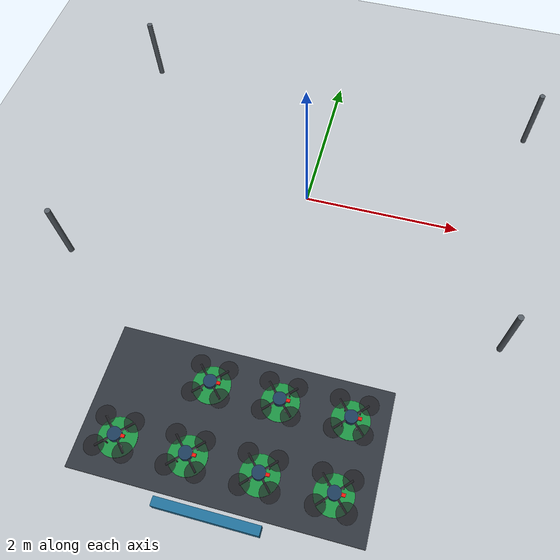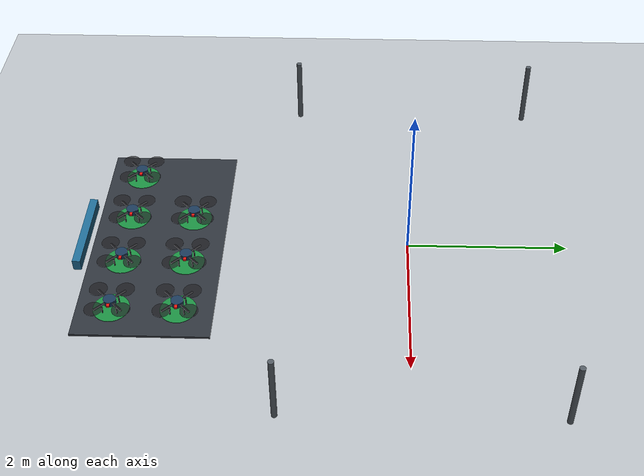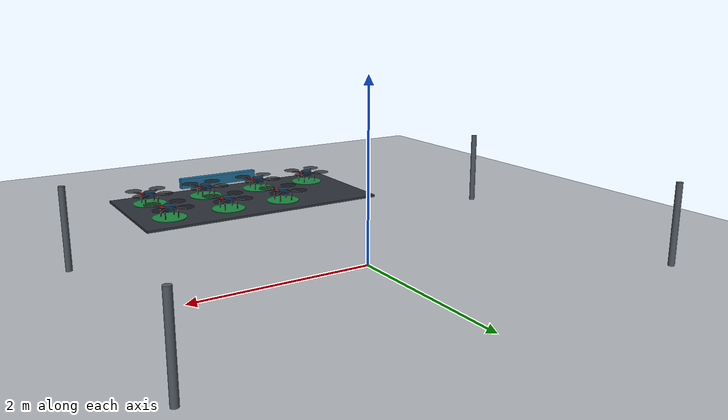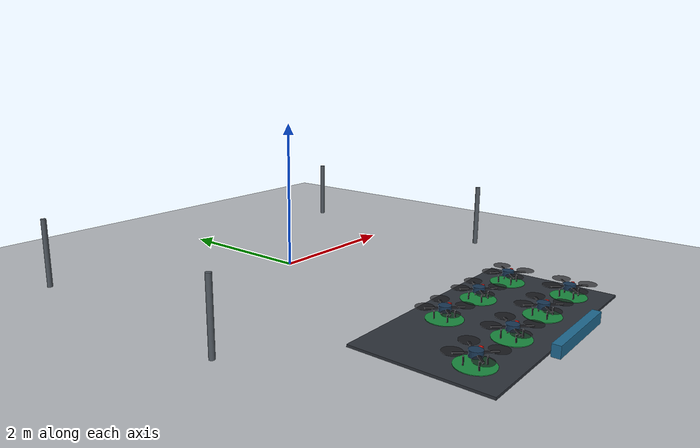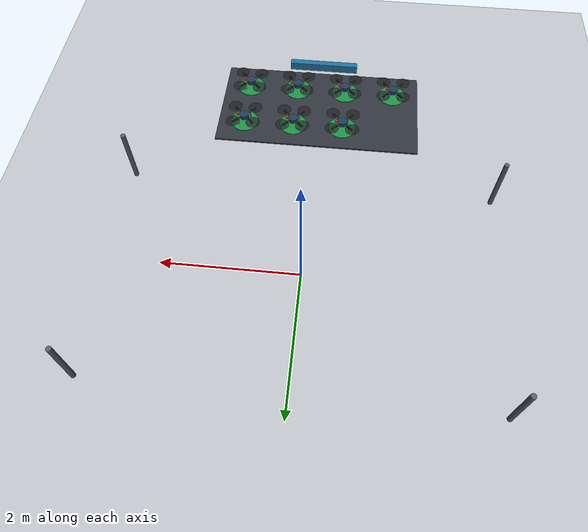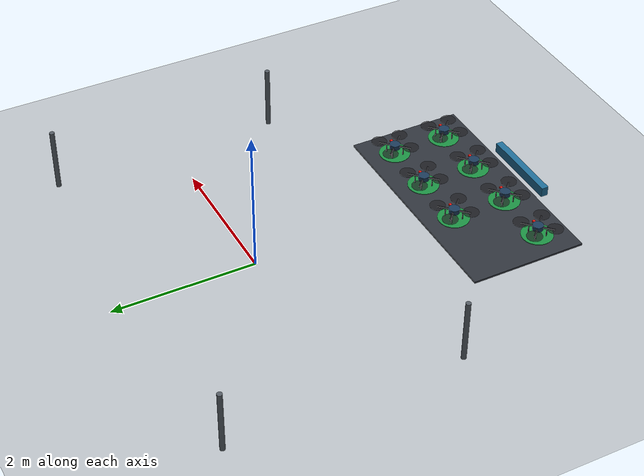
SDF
<?xml version="1.0"?>
<sdf version="1.9">
  <world name="open_team">
    <physics name="2ms_recording" type="ignored">
      <max_step_size>0.002</max_step_size>
      <real_time_factor>1.0</real_time_factor>
    </physics>

    <plugin filename="gz-sim-physics-system" name="gz::sim::systems::Physics"/>
    <plugin filename="gz-sim-user-commands-system" name="gz::sim::systems::UserCommands"/>
    <plugin filename="gz-sim-scene-broadcaster-system" name="gz::sim::systems::SceneBroadcaster"/>

    <light type="directional" name="sun">
      <cast_shadows>false</cast_shadows>
      <pose>0 0 12 0 0 0</pose>
      <diffuse>0.88 0.88 0.88 1</diffuse>
      <specular>0.18 0.18 0.18 1</specular>
      <direction>-0.45 0.25 -0.85</direction>
    </light>

    <model name="ground_plane">
      <static>true</static>
      <link name="link">
        <collision name="collision"><geometry><plane><normal>0 0 1</normal><size>30 30</size></plane></geometry></collision>
        <visual name="visual">
          <geometry><plane><normal>0 0 1</normal><size>30 30</size></plane></geometry>
          <material><ambient>0.58 0.61 0.64 1</ambient><diffuse>0.72 0.74 0.76 1</diffuse><specular>0.08 0.08 0.08 1</specular></material>
        </visual>
      </link>
    </model>

    <model name="charging_station">
      <static>true</static>
      <pose>0 -3.15 0 0 0 0</pose>
      <link name="platform">
        <collision name="platform_collision"><pose>0 0 0.015 0 0 0</pose><geometry><box><size>3.25 1.65 0.03</size></box></geometry></collision>
        <visual name="platform_visual"><pose>0 0 0.015 0 0 0</pose><geometry><box><size>3.25 1.65 0.03</size></box></geometry><material><ambient>0.10 0.11 0.13 1</ambient><diffuse>0.18 0.20 0.23 1</diffuse></material></visual>
        <visual name="pad_0"><pose>-1.200 -0.400 0.034 0 0 0</pose><geometry><cylinder><radius>0.22</radius><length>0.008</length></cylinder></geometry><material><ambient>0.08 0.30 0.16 1</ambient><diffuse>0.10 0.55 0.25 1</diffuse><emissive>0.02 0.08 0.03 1</emissive></material></visual>
        <visual name="pad_1"><pose>-0.400 -0.400 0.034 0 0 0</pose><geometry><cylinder><radius>0.22</radius><length>0.008</length></cylinder></geometry><material><ambient>0.08 0.30 0.16 1</ambient><diffuse>0.10 0.55 0.25 1</diffuse><emissive>0.02 0.08 0.03 1</emissive></material></visual>
        <visual name="pad_2"><pose>0.400 -0.400 0.034 0 0 0</pose><geometry><cylinder><radius>0.22</radius><length>0.008</length></cylinder></geometry><material><ambient>0.08 0.30 0.16 1</ambient><diffuse>0.10 0.55 0.25 1</diffuse><emissive>0.02 0.08 0.03 1</emissive></material></visual>
        <visual name="pad_3"><pose>1.200 -0.400 0.034 0 0 0</pose><geometry><cylinder><radius>0.22</radius><length>0.008</length></cylinder></geometry><material><ambient>0.08 0.30 0.16 1</ambient><diffuse>0.10 0.55 0.25 1</diffuse><emissive>0.02 0.08 0.03 1</emissive></material></visual>
        <visual name="pad_4"><pose>1.200 0.400 0.034 0 0 0</pose><geometry><cylinder><radius>0.22</radius><length>0.008</length></cylinder></geometry><material><ambient>0.08 0.30 0.16 1</ambient><diffuse>0.10 0.55 0.25 1</diffuse><emissive>0.02 0.08 0.03 1</emissive></material></visual>
        <visual name="pad_5"><pose>0.400 0.400 0.034 0 0 0</pose><geometry><cylinder><radius>0.22</radius><length>0.008</length></cylinder></geometry><material><ambient>0.08 0.30 0.16 1</ambient><diffuse>0.10 0.55 0.25 1</diffuse><emissive>0.02 0.08 0.03 1</emissive></material></visual>
        <visual name="pad_6"><pose>-0.400 0.400 0.034 0 0 0</pose><geometry><cylinder><radius>0.22</radius><length>0.008</length></cylinder></geometry><material><ambient>0.08 0.30 0.16 1</ambient><diffuse>0.10 0.55 0.25 1</diffuse><emissive>0.02 0.08 0.03 1</emissive></material></visual>
        <visual name="station_label">
          <pose>0 -0.93 0.11 0 0 0</pose>
          <geometry><box><size>1.15 0.10 0.14</size></box></geometry>
          <material><ambient>0.10 0.25 0.35 1</ambient><diffuse>0.12 0.42 0.58 1</diffuse></material>
        </visual>
      </link>
    </model>

    <model name="workspace_post_0"><static>true</static><pose>-2.7 1.7 0 0 0 0</pose><link name="link"><collision name="collision"><pose>0 0 0.45 0 0 0</pose><geometry><cylinder><radius>0.035</radius><length>0.9</length></cylinder></geometry></collision><visual name="visual"><pose>0 0 0.45 0 0 0</pose><geometry><cylinder><radius>0.035</radius><length>0.9</length></cylinder></geometry><material><diffuse>0.32 0.35 0.38 1</diffuse></material></visual></link></model>
    <model name="workspace_post_1"><static>true</static><pose>2.7 1.7 0 0 0 0</pose><link name="link"><collision name="collision"><pose>0 0 0.45 0 0 0</pose><geometry><cylinder><radius>0.035</radius><length>0.9</length></cylinder></geometry></collision><visual name="visual"><pose>0 0 0.45 0 0 0</pose><geometry><cylinder><radius>0.035</radius><length>0.9</length></cylinder></geometry><material><diffuse>0.32 0.35 0.38 1</diffuse></material></visual></link></model>
    <model name="workspace_post_2"><static>true</static><pose>-2.7 -1.5 0 0 0 0</pose><link name="link"><collision name="collision"><pose>0 0 0.45 0 0 0</pose><geometry><cylinder><radius>0.035</radius><length>0.9</length></cylinder></geometry></collision><visual name="visual"><pose>0 0 0.45 0 0 0</pose><geometry><cylinder><radius>0.035</radius><length>0.9</length></cylinder></geometry><material><diffuse>0.32 0.35 0.38 1</diffuse></material></visual></link></model>
    <model name="workspace_post_3"><static>true</static><pose>2.7 -1.5 0 0 0 0</pose><link name="link"><collision name="collision"><pose>0 0 0.45 0 0 0</pose><geometry><cylinder><radius>0.035</radius><length>0.9</length></cylinder></geometry></collision><visual name="visual"><pose>0 0 0.45 0 0 0</pose><geometry><cylinder><radius>0.035</radius><length>0.9</length></cylinder></geometry><material><diffuse>0.32 0.35 0.38 1</diffuse></material></visual></link></model>

    <include>
      <uri>model://omrs_quadrotor</uri>
      <name>drone_0</name>
      <pose>-1.20000 -3.55000 0.16000 0 0 0</pose>
      <plugin filename="gz-sim-multicopter-motor-model-system" name="gz::sim::systems::MulticopterMotorModel">
        <robotNamespace>drone_0</robotNamespace>
        <jointName>rotor_0_joint</jointName>
        <linkName>rotor_0</linkName>
        <turningDirection>ccw</turningDirection>
        <timeConstantUp>0.045</timeConstantUp>
        <timeConstantDown>0.045</timeConstantDown>
        <maxRotVelocity>900.0</maxRotVelocity>
        <motorConstant>8.64197530864e-06</motorConstant>
        <momentConstant>0.018</momentConstant>
        <commandSubTopic>command/motor_speed</commandSubTopic>
        <actuator_number>0</actuator_number>
        <rotorDragCoefficient>8.06428e-05</rotorDragCoefficient>
        <rollingMomentCoefficient>1e-06</rollingMomentCoefficient>
        <motorSpeedPubTopic>motor_speed/0</motorSpeedPubTopic>
        <rotorVelocitySlowdownSim>10</rotorVelocitySlowdownSim>
        <motorType>velocity</motorType>
      </plugin>
      <plugin filename="gz-sim-multicopter-motor-model-system" name="gz::sim::systems::MulticopterMotorModel">
        <robotNamespace>drone_0</robotNamespace>
        <jointName>rotor_1_joint</jointName>
        <linkName>rotor_1</linkName>
        <turningDirection>cw</turningDirection>
        <timeConstantUp>0.045</timeConstantUp>
        <timeConstantDown>0.045</timeConstantDown>
        <maxRotVelocity>900.0</maxRotVelocity>
        <motorConstant>8.64197530864e-06</motorConstant>
        <momentConstant>0.018</momentConstant>
        <commandSubTopic>command/motor_speed</commandSubTopic>
        <actuator_number>1</actuator_number>
        <rotorDragCoefficient>8.06428e-05</rotorDragCoefficient>
        <rollingMomentCoefficient>1e-06</rollingMomentCoefficient>
        <motorSpeedPubTopic>motor_speed/1</motorSpeedPubTopic>
        <rotorVelocitySlowdownSim>10</rotorVelocitySlowdownSim>
        <motorType>velocity</motorType>
      </plugin>
      <plugin filename="gz-sim-multicopter-motor-model-system" name="gz::sim::systems::MulticopterMotorModel">
        <robotNamespace>drone_0</robotNamespace>
        <jointName>rotor_2_joint</jointName>
        <linkName>rotor_2</linkName>
        <turningDirection>ccw</turningDirection>
        <timeConstantUp>0.045</timeConstantUp>
        <timeConstantDown>0.045</timeConstantDown>
        <maxRotVelocity>900.0</maxRotVelocity>
        <motorConstant>8.64197530864e-06</motorConstant>
        <momentConstant>0.018</momentConstant>
        <commandSubTopic>command/motor_speed</commandSubTopic>
        <actuator_number>2</actuator_number>
        <rotorDragCoefficient>8.06428e-05</rotorDragCoefficient>
        <rollingMomentCoefficient>1e-06</rollingMomentCoefficient>
        <motorSpeedPubTopic>motor_speed/2</motorSpeedPubTopic>
        <rotorVelocitySlowdownSim>10</rotorVelocitySlowdownSim>
        <motorType>velocity</motorType>
      </plugin>
      <plugin filename="gz-sim-multicopter-motor-model-system" name="gz::sim::systems::MulticopterMotorModel">
        <robotNamespace>drone_0</robotNamespace>
        <jointName>rotor_3_joint</jointName>
        <linkName>rotor_3</linkName>
        <turningDirection>cw</turningDirection>
        <timeConstantUp>0.045</timeConstantUp>
        <timeConstantDown>0.045</timeConstantDown>
        <maxRotVelocity>900.0</maxRotVelocity>
        <motorConstant>8.64197530864e-06</motorConstant>
        <momentConstant>0.018</momentConstant>
        <commandSubTopic>command/motor_speed</commandSubTopic>
        <actuator_number>3</actuator_number>
        <rotorDragCoefficient>8.06428e-05</rotorDragCoefficient>
        <rollingMomentCoefficient>1e-06</rollingMomentCoefficient>
        <motorSpeedPubTopic>motor_speed/3</motorSpeedPubTopic>
        <rotorVelocitySlowdownSim>10</rotorVelocitySlowdownSim>
        <motorType>velocity</motorType>
      </plugin>
      <plugin filename="gz-sim-odometry-publisher-system" name="gz::sim::systems::OdometryPublisher">
        <odom_publish_frequency>100</odom_publish_frequency>
        <dimensions>3</dimensions>
        <odom_frame>world</odom_frame>
        <robot_base_frame>drone_0/base_link</robot_base_frame>
        <odom_topic>/model/drone_0/odometry</odom_topic>
        <tf_topic>/model/drone_0/pose</tf_topic>
      </plugin>
    </include>

    <include>
      <uri>model://omrs_quadrotor</uri>
      <name>drone_1</name>
      <pose>-0.40000 -3.55000 0.16000 0 0 0</pose>
      <plugin filename="gz-sim-multicopter-motor-model-system" name="gz::sim::systems::MulticopterMotorModel">
        <robotNamespace>drone_1</robotNamespace>
        <jointName>rotor_0_joint</jointName>
        <linkName>rotor_0</linkName>
        <turningDirection>ccw</turningDirection>
        <timeConstantUp>0.045</timeConstantUp>
        <timeConstantDown>0.045</timeConstantDown>
        <maxRotVelocity>900.0</maxRotVelocity>
        <motorConstant>8.64197530864e-06</motorConstant>
        <momentConstant>0.018</momentConstant>
        <commandSubTopic>command/motor_speed</commandSubTopic>
        <actuator_number>0</actuator_number>
        <rotorDragCoefficient>8.06428e-05</rotorDragCoefficient>
        <rollingMomentCoefficient>1e-06</rollingMomentCoefficient>
        <motorSpeedPubTopic>motor_speed/0</motorSpeedPubTopic>
        <rotorVelocitySlowdownSim>10</rotorVelocitySlowdownSim>
        <motorType>velocity</motorType>
      </plugin>
      <plugin filename="gz-sim-multicopter-motor-model-system" name="gz::sim::systems::MulticopterMotorModel">
        <robotNamespace>drone_1</robotNamespace>
        <jointName>rotor_1_joint</jointName>
        <linkName>rotor_1</linkName>
        <turningDirection>cw</turningDirection>
        <timeConstantUp>0.045</timeConstantUp>
        <timeConstantDown>0.045</timeConstantDown>
        <maxRotVelocity>900.0</maxRotVelocity>
        <motorConstant>8.64197530864e-06</motorConstant>
        <momentConstant>0.018</momentConstant>
        <commandSubTopic>command/motor_speed</commandSubTopic>
        <actuator_number>1</actuator_number>
        <rotorDragCoefficient>8.06428e-05</rotorDragCoefficient>
        <rollingMomentCoefficient>1e-06</rollingMomentCoefficient>
        <motorSpeedPubTopic>motor_speed/1</motorSpeedPubTopic>
        <rotorVelocitySlowdownSim>10</rotorVelocitySlowdownSim>
        <motorType>velocity</motorType>
      </plugin>
      <plugin filename="gz-sim-multicopter-motor-model-system" name="gz::sim::systems::MulticopterMotorModel">
        <robotNamespace>drone_1</robotNamespace>
        <jointName>rotor_2_joint</jointName>
        <linkName>rotor_2</linkName>
        <turningDirection>ccw</turningDirection>
        <timeConstantUp>0.045</timeConstantUp>
        <timeConstantDown>0.045</timeConstantDown>
        <maxRotVelocity>900.0</maxRotVelocity>
        <motorConstant>8.64197530864e-06</motorConstant>
        <momentConstant>0.018</momentConstant>
        <commandSubTopic>command/motor_speed</commandSubTopic>
        <actuator_number>2</actuator_number>
        <rotorDragCoefficient>8.06428e-05</rotorDragCoefficient>
        <rollingMomentCoefficient>1e-06</rollingMomentCoefficient>
        <motorSpeedPubTopic>motor_speed/2</motorSpeedPubTopic>
        <rotorVelocitySlowdownSim>10</rotorVelocitySlowdownSim>
        <motorType>velocity</motorType>
      </plugin>
      <plugin filename="gz-sim-multicopter-motor-model-system" name="gz::sim::systems::MulticopterMotorModel">
        <robotNamespace>drone_1</robotNamespace>
        <jointName>rotor_3_joint</jointName>
        <linkName>rotor_3</linkName>
        <turningDirection>cw</turningDirection>
        <timeConstantUp>0.045</timeConstantUp>
        <timeConstantDown>0.045</timeConstantDown>
        <maxRotVelocity>900.0</maxRotVelocity>
        <motorConstant>8.64197530864e-06</motorConstant>
        <momentConstant>0.018</momentConstant>
        <commandSubTopic>command/motor_speed</commandSubTopic>
        <actuator_number>3</actuator_number>
        <rotorDragCoefficient>8.06428e-05</rotorDragCoefficient>
        <rollingMomentCoefficient>1e-06</rollingMomentCoefficient>
        <motorSpeedPubTopic>motor_speed/3</motorSpeedPubTopic>
        <rotorVelocitySlowdownSim>10</rotorVelocitySlowdownSim>
        <motorType>velocity</motorType>
      </plugin>
      <plugin filename="gz-sim-odometry-publisher-system" name="gz::sim::systems::OdometryPublisher">
        <odom_publish_frequency>100</odom_publish_frequency>
        <dimensions>3</dimensions>
        <odom_frame>world</odom_frame>
        <robot_base_frame>drone_1/base_link</robot_base_frame>
        <odom_topic>/model/drone_1/odometry</odom_topic>
        <tf_topic>/model/drone_1/pose</tf_topic>
      </plugin>
    </include>

    <include>
      <uri>model://omrs_quadrotor</uri>
      <name>drone_2</name>
      <pose>0.40000 -3.55000 0.16000 0 0 0</pose>
      <plugin filename="gz-sim-multicopter-motor-model-system" name="gz::sim::systems::MulticopterMotorModel">
        <robotNamespace>drone_2</robotNamespace>
        <jointName>rotor_0_joint</jointName>
        <linkName>rotor_0</linkName>
        <turningDirection>ccw</turningDirection>
        <timeConstantUp>0.045</timeConstantUp>
        <timeConstantDown>0.045</timeConstantDown>
        <maxRotVelocity>900.0</maxRotVelocity>
        <motorConstant>8.64197530864e-06</motorConstant>
        <momentConstant>0.018</momentConstant>
        <commandSubTopic>command/motor_speed</commandSubTopic>
        <actuator_number>0</actuator_number>
        <rotorDragCoefficient>8.06428e-05</rotorDragCoefficient>
        <rollingMomentCoefficient>1e-06</rollingMomentCoefficient>
        <motorSpeedPubTopic>motor_speed/0</motorSpeedPubTopic>
        <rotorVelocitySlowdownSim>10</rotorVelocitySlowdownSim>
        <motorType>velocity</motorType>
      </plugin>
      <plugin filename="gz-sim-multicopter-motor-model-system" name="gz::sim::systems::MulticopterMotorModel">
        <robotNamespace>drone_2</robotNamespace>
        <jointName>rotor_1_joint</jointName>
        <linkName>rotor_1</linkName>
        <turningDirection>cw</turningDirection>
        <timeConstantUp>0.045</timeConstantUp>
        <timeConstantDown>0.045</timeConstantDown>
        <maxRotVelocity>900.0</maxRotVelocity>
        <motorConstant>8.64197530864e-06</motorConstant>
        <momentConstant>0.018</momentConstant>
        <commandSubTopic>command/motor_speed</commandSubTopic>
        <actuator_number>1</actuator_number>
        <rotorDragCoefficient>8.06428e-05</rotorDragCoefficient>
        <rollingMomentCoefficient>1e-06</rollingMomentCoefficient>
        <motorSpeedPubTopic>motor_speed/1</motorSpeedPubTopic>
        <rotorVelocitySlowdownSim>10</rotorVelocitySlowdownSim>
        <motorType>velocity</motorType>
      </plugin>
      <plugin filename="gz-sim-multicopter-motor-model-system" name="gz::sim::systems::MulticopterMotorModel">
        <robotNamespace>drone_2</robotNamespace>
        <jointName>rotor_2_joint</jointName>
        <linkName>rotor_2</linkName>
        <turningDirection>ccw</turningDirection>
        <timeConstantUp>0.045</timeConstantUp>
        <timeConstantDown>0.045</timeConstantDown>
        <maxRotVelocity>900.0</maxRotVelocity>
        <motorConstant>8.64197530864e-06</motorConstant>
        <momentConstant>0.018</momentConstant>
        <commandSubTopic>command/motor_speed</commandSubTopic>
        <actuator_number>2</actuator_number>
        <rotorDragCoefficient>8.06428e-05</rotorDragCoefficient>
        <rollingMomentCoefficient>1e-06</rollingMomentCoefficient>
        <motorSpeedPubTopic>motor_speed/2</motorSpeedPubTopic>
        <rotorVelocitySlowdownSim>10</rotorVelocitySlowdownSim>
        <motorType>velocity</motorType>
      </plugin>
      <plugin filename="gz-sim-multicopter-motor-model-system" name="gz::sim::systems::MulticopterMotorModel">
        <robotNamespace>drone_2</robotNamespace>
        <jointName>rotor_3_joint</jointName>
        <linkName>rotor_3</linkName>
        <turningDirection>cw</turningDirection>
        <timeConstantUp>0.045</timeConstantUp>
        <timeConstantDown>0.045</timeConstantDown>
        <maxRotVelocity>900.0</maxRotVelocity>
        <motorConstant>8.64197530864e-06</motorConstant>
        <momentConstant>0.018</momentConstant>
        <commandSubTopic>command/motor_speed</commandSubTopic>
        <actuator_number>3</actuator_number>
        <rotorDragCoefficient>8.06428e-05</rotorDragCoefficient>
        <rollingMomentCoefficient>1e-06</rollingMomentCoefficient>
        <motorSpeedPubTopic>motor_speed/3</motorSpeedPubTopic>
        <rotorVelocitySlowdownSim>10</rotorVelocitySlowdownSim>
        <motorType>velocity</motorType>
      </plugin>
      <plugin filename="gz-sim-odometry-publisher-system" name="gz::sim::systems::OdometryPublisher">
        <odom_publish_frequency>100</odom_publish_frequency>
        <dimensions>3</dimensions>
        <odom_frame>world</odom_frame>
        <robot_base_frame>drone_2/base_link</robot_base_frame>
        <odom_topic>/model/drone_2/odometry</odom_topic>
        <tf_topic>/model/drone_2/pose</tf_topic>
      </plugin>
    </include>

    <include>
      <uri>model://omrs_quadrotor</uri>
      <name>drone_3</name>
      <pose>1.20000 -3.55000 0.16000 0 0 0</pose>
      <plugin filename="gz-sim-multicopter-motor-model-system" name="gz::sim::systems::MulticopterMotorModel">
        <robotNamespace>drone_3</robotNamespace>
        <jointName>rotor_0_joint</jointName>
        <linkName>rotor_0</linkName>
        <turningDirection>ccw</turningDirection>
        <timeConstantUp>0.045</timeConstantUp>
        <timeConstantDown>0.045</timeConstantDown>
        <maxRotVelocity>900.0</maxRotVelocity>
        <motorConstant>8.64197530864e-06</motorConstant>
        <momentConstant>0.018</momentConstant>
        <commandSubTopic>command/motor_speed</commandSubTopic>
        <actuator_number>0</actuator_number>
        <rotorDragCoefficient>8.06428e-05</rotorDragCoefficient>
        <rollingMomentCoefficient>1e-06</rollingMomentCoefficient>
        <motorSpeedPubTopic>motor_speed/0</motorSpeedPubTopic>
        <rotorVelocitySlowdownSim>10</rotorVelocitySlowdownSim>
        <motorType>velocity</motorType>
      </plugin>
      <plugin filename="gz-sim-multicopter-motor-model-system" name="gz::sim::systems::MulticopterMotorModel">
        <robotNamespace>drone_3</robotNamespace>
        <jointName>rotor_1_joint</jointName>
        <linkName>rotor_1</linkName>
        <turningDirection>cw</turningDirection>
        <timeConstantUp>0.045</timeConstantUp>
        <timeConstantDown>0.045</timeConstantDown>
        <maxRotVelocity>900.0</maxRotVelocity>
        <motorConstant>8.64197530864e-06</motorConstant>
        <momentConstant>0.018</momentConstant>
        <commandSubTopic>command/motor_speed</commandSubTopic>
        <actuator_number>1</actuator_number>
        <rotorDragCoefficient>8.06428e-05</rotorDragCoefficient>
        <rollingMomentCoefficient>1e-06</rollingMomentCoefficient>
        <motorSpeedPubTopic>motor_speed/1</motorSpeedPubTopic>
        <rotorVelocitySlowdownSim>10</rotorVelocitySlowdownSim>
        <motorType>velocity</motorType>
      </plugin>
      <plugin filename="gz-sim-multicopter-motor-model-system" name="gz::sim::systems::MulticopterMotorModel">
        <robotNamespace>drone_3</robotNamespace>
        <jointName>rotor_2_joint</jointName>
        <linkName>rotor_2</linkName>
        <turningDirection>ccw</turningDirection>
        <timeConstantUp>0.045</timeConstantUp>
        <timeConstantDown>0.045</timeConstantDown>
        <maxRotVelocity>900.0</maxRotVelocity>
        <motorConstant>8.64197530864e-06</motorConstant>
        <momentConstant>0.018</momentConstant>
        <commandSubTopic>command/motor_speed</commandSubTopic>
        <actuator_number>2</actuator_number>
        <rotorDragCoefficient>8.06428e-05</rotorDragCoefficient>
        <rollingMomentCoefficient>1e-06</rollingMomentCoefficient>
        <motorSpeedPubTopic>motor_speed/2</motorSpeedPubTopic>
        <rotorVelocitySlowdownSim>10</rotorVelocitySlowdownSim>
        <motorType>velocity</motorType>
      </plugin>
      <plugin filename="gz-sim-multicopter-motor-model-system" name="gz::sim::systems::MulticopterMotorModel">
        <robotNamespace>drone_3</robotNamespace>
        <jointName>rotor_3_joint</jointName>
        <linkName>rotor_3</linkName>
        <turningDirection>cw</turningDirection>
        <timeConstantUp>0.045</timeConstantUp>
        <timeConstantDown>0.045</timeConstantDown>
        <maxRotVelocity>900.0</maxRotVelocity>
        <motorConstant>8.64197530864e-06</motorConstant>
        <momentConstant>0.018</momentConstant>
        <commandSubTopic>command/motor_speed</commandSubTopic>
        <actuator_number>3</actuator_number>
        <rotorDragCoefficient>8.06428e-05</rotorDragCoefficient>
        <rollingMomentCoefficient>1e-06</rollingMomentCoefficient>
        <motorSpeedPubTopic>motor_speed/3</motorSpeedPubTopic>
        <rotorVelocitySlowdownSim>10</rotorVelocitySlowdownSim>
        <motorType>velocity</motorType>
      </plugin>
      <plugin filename="gz-sim-odometry-publisher-system" name="gz::sim::systems::OdometryPublisher">
        <odom_publish_frequency>100</odom_publish_frequency>
        <dimensions>3</dimensions>
        <odom_frame>world</odom_frame>
        <robot_base_frame>drone_3/base_link</robot_base_frame>
        <odom_topic>/model/drone_3/odometry</odom_topic>
        <tf_topic>/model/drone_3/pose</tf_topic>
      </plugin>
    </include>

    <include>
      <uri>model://omrs_quadrotor</uri>
      <name>drone_4</name>
      <pose>1.20000 -2.75000 0.16000 0 0 0</pose>
      <plugin filename="gz-sim-multicopter-motor-model-system" name="gz::sim::systems::MulticopterMotorModel">
        <robotNamespace>drone_4</robotNamespace>
        <jointName>rotor_0_joint</jointName>
        <linkName>rotor_0</linkName>
        <turningDirection>ccw</turningDirection>
        <timeConstantUp>0.045</timeConstantUp>
        <timeConstantDown>0.045</timeConstantDown>
        <maxRotVelocity>900.0</maxRotVelocity>
        <motorConstant>8.64197530864e-06</motorConstant>
        <momentConstant>0.018</momentConstant>
        <commandSubTopic>command/motor_speed</commandSubTopic>
        <actuator_number>0</actuator_number>
        <rotorDragCoefficient>8.06428e-05</rotorDragCoefficient>
        <rollingMomentCoefficient>1e-06</rollingMomentCoefficient>
        <motorSpeedPubTopic>motor_speed/0</motorSpeedPubTopic>
        <rotorVelocitySlowdownSim>10</rotorVelocitySlowdownSim>
        <motorType>velocity</motorType>
      </plugin>
      <plugin filename="gz-sim-multicopter-motor-model-system" name="gz::sim::systems::MulticopterMotorModel">
        <robotNamespace>drone_4</robotNamespace>
        <jointName>rotor_1_joint</jointName>
        <linkName>rotor_1</linkName>
        <turningDirection>cw</turningDirection>
        <timeConstantUp>0.045</timeConstantUp>
        <timeConstantDown>0.045</timeConstantDown>
        <maxRotVelocity>900.0</maxRotVelocity>
        <motorConstant>8.64197530864e-06</motorConstant>
        <momentConstant>0.018</momentConstant>
        <commandSubTopic>command/motor_speed</commandSubTopic>
        <actuator_number>1</actuator_number>
        <rotorDragCoefficient>8.06428e-05</rotorDragCoefficient>
        <rollingMomentCoefficient>1e-06</rollingMomentCoefficient>
        <motorSpeedPubTopic>motor_speed/1</motorSpeedPubTopic>
        <rotorVelocitySlowdownSim>10</rotorVelocitySlowdownSim>
        <motorType>velocity</motorType>
      </plugin>
      <plugin filename="gz-sim-multicopter-motor-model-system" name="gz::sim::systems::MulticopterMotorModel">
        <robotNamespace>drone_4</robotNamespace>
        <jointName>rotor_2_joint</jointName>
        <linkName>rotor_2</linkName>
        <turningDirection>ccw</turningDirection>
        <timeConstantUp>0.045</timeConstantUp>
        <timeConstantDown>0.045</timeConstantDown>
        <maxRotVelocity>900.0</maxRotVelocity>
        <motorConstant>8.64197530864e-06</motorConstant>
        <momentConstant>0.018</momentConstant>
        <commandSubTopic>command/motor_speed</commandSubTopic>
        <actuator_number>2</actuator_number>
        <rotorDragCoefficient>8.06428e-05</rotorDragCoefficient>
        <rollingMomentCoefficient>1e-06</rollingMomentCoefficient>
        <motorSpeedPubTopic>motor_speed/2</motorSpeedPubTopic>
        <rotorVelocitySlowdownSim>10</rotorVelocitySlowdownSim>
        <motorType>velocity</motorType>
      </plugin>
      <plugin filename="gz-sim-multicopter-motor-model-system" name="gz::sim::systems::MulticopterMotorModel">
        <robotNamespace>drone_4</robotNamespace>
        <jointName>rotor_3_joint</jointName>
        <linkName>rotor_3</linkName>
        <turningDirection>cw</turningDirection>
        <timeConstantUp>0.045</timeConstantUp>
        <timeConstantDown>0.045</timeConstantDown>
        <maxRotVelocity>900.0</maxRotVelocity>
        <motorConstant>8.64197530864e-06</motorConstant>
        <momentConstant>0.018</momentConstant>
        <commandSubTopic>command/motor_speed</commandSubTopic>
        <actuator_number>3</actuator_number>
        <rotorDragCoefficient>8.06428e-05</rotorDragCoefficient>
        <rollingMomentCoefficient>1e-06</rollingMomentCoefficient>
        <motorSpeedPubTopic>motor_speed/3</motorSpeedPubTopic>
        <rotorVelocitySlowdownSim>10</rotorVelocitySlowdownSim>
        <motorType>velocity</motorType>
      </plugin>
      <plugin filename="gz-sim-odometry-publisher-system" name="gz::sim::systems::OdometryPublisher">
        <odom_publish_frequency>100</odom_publish_frequency>
        <dimensions>3</dimensions>
        <odom_frame>world</odom_frame>
        <robot_base_frame>drone_4/base_link</robot_base_frame>
        <odom_topic>/model/drone_4/odometry</odom_topic>
        <tf_topic>/model/drone_4/pose</tf_topic>
      </plugin>
    </include>

    <include>
      <uri>model://omrs_quadrotor</uri>
      <name>drone_5</name>
      <pose>0.40000 -2.75000 0.16000 0 0 0</pose>
      <plugin filename="gz-sim-multicopter-motor-model-system" name="gz::sim::systems::MulticopterMotorModel">
        <robotNamespace>drone_5</robotNamespace>
        <jointName>rotor_0_joint</jointName>
        <linkName>rotor_0</linkName>
        <turningDirection>ccw</turningDirection>
        <timeConstantUp>0.045</timeConstantUp>
        <timeConstantDown>0.045</timeConstantDown>
        <maxRotVelocity>900.0</maxRotVelocity>
        <motorConstant>8.64197530864e-06</motorConstant>
        <momentConstant>0.018</momentConstant>
        <commandSubTopic>command/motor_speed</commandSubTopic>
        <actuator_number>0</actuator_number>
        <rotorDragCoefficient>8.06428e-05</rotorDragCoefficient>
        <rollingMomentCoefficient>1e-06</rollingMomentCoefficient>
        <motorSpeedPubTopic>motor_speed/0</motorSpeedPubTopic>
        <rotorVelocitySlowdownSim>10</rotorVelocitySlowdownSim>
        <motorType>velocity</motorType>
      </plugin>
      <plugin filename="gz-sim-multicopter-motor-model-system" name="gz::sim::systems::MulticopterMotorModel">
        <robotNamespace>drone_5</robotNamespace>
        <jointName>rotor_1_joint</jointName>
        <linkName>rotor_1</linkName>
        <turningDirection>cw</turningDirection>
        <timeConstantUp>0.045</timeConstantUp>
        <timeConstantDown>0.045</timeConstantDown>
        <maxRotVelocity>900.0</maxRotVelocity>
        <motorConstant>8.64197530864e-06</motorConstant>
        <momentConstant>0.018</momentConstant>
        <commandSubTopic>command/motor_speed</commandSubTopic>
        <actuator_number>1</actuator_number>
        <rotorDragCoefficient>8.06428e-05</rotorDragCoefficient>
        <rollingMomentCoefficient>1e-06</rollingMomentCoefficient>
        <motorSpeedPubTopic>motor_speed/1</motorSpeedPubTopic>
        <rotorVelocitySlowdownSim>10</rotorVelocitySlowdownSim>
        <motorType>velocity</motorType>
      </plugin>
      <plugin filename="gz-sim-multicopter-motor-model-system" name="gz::sim::systems::MulticopterMotorModel">
        <robotNamespace>drone_5</robotNamespace>
        <jointName>rotor_2_joint</jointName>
        <linkName>rotor_2</linkName>
        <turningDirection>ccw</turningDirection>
        <timeConstantUp>0.045</timeConstantUp>
        <timeConstantDown>0.045</timeConstantDown>
        <maxRotVelocity>900.0</maxRotVelocity>
        <motorConstant>8.64197530864e-06</motorConstant>
        <momentConstant>0.018</momentConstant>
        <commandSubTopic>command/motor_speed</commandSubTopic>
        <actuator_number>2</actuator_number>
        <rotorDragCoefficient>8.06428e-05</rotorDragCoefficient>
        <rollingMomentCoefficient>1e-06</rollingMomentCoefficient>
        <motorSpeedPubTopic>motor_speed/2</motorSpeedPubTopic>
        <rotorVelocitySlowdownSim>10</rotorVelocitySlowdownSim>
        <motorType>velocity</motorType>
      </plugin>
      <plugin filename="gz-sim-multicopter-motor-model-system" name="gz::sim::systems::MulticopterMotorModel">
        <robotNamespace>drone_5</robotNamespace>
        <jointName>rotor_3_joint</jointName>
        <linkName>rotor_3</linkName>
        <turningDirection>cw</turningDirection>
        <timeConstantUp>0.045</timeConstantUp>
        <timeConstantDown>0.045</timeConstantDown>
        <maxRotVelocity>900.0</maxRotVelocity>
        <motorConstant>8.64197530864e-06</motorConstant>
        <momentConstant>0.018</momentConstant>
        <commandSubTopic>command/motor_speed</commandSubTopic>
        <actuator_number>3</actuator_number>
        <rotorDragCoefficient>8.06428e-05</rotorDragCoefficient>
        <rollingMomentCoefficient>1e-06</rollingMomentCoefficient>
        <motorSpeedPubTopic>motor_speed/3</motorSpeedPubTopic>
        <rotorVelocitySlowdownSim>10</rotorVelocitySlowdownSim>
        <motorType>velocity</motorType>
      </plugin>
      <plugin filename="gz-sim-odometry-publisher-system" name="gz::sim::systems::OdometryPublisher">
        <odom_publish_frequency>100</odom_publish_frequency>
        <dimensions>3</dimensions>
        <odom_frame>world</odom_frame>
        <robot_base_frame>drone_5/base_link</robot_base_frame>
        <odom_topic>/model/drone_5/odometry</odom_topic>
        <tf_topic>/model/drone_5/pose</tf_topic>
      </plugin>
    </include>

    <include>
      <uri>model://omrs_quadrotor</uri>
      <name>drone_6</name>
      <pose>-0.40000 -2.75000 0.16000 0 0 0</pose>
      <plugin filename="gz-sim-multicopter-motor-model-system" name="gz::sim::systems::MulticopterMotorModel">
        <robotNamespace>drone_6</robotNamespace>
        <jointName>rotor_0_joint</jointName>
        <linkName>rotor_0</linkName>
        <turningDirection>ccw</turningDirection>
        <timeConstantUp>0.045</timeConstantUp>
        <timeConstantDown>0.045</timeConstantDown>
        <maxRotVelocity>900.0</maxRotVelocity>
        <motorConstant>8.64197530864e-06</motorConstant>
        <momentConstant>0.018</momentConstant>
        <commandSubTopic>command/motor_speed</commandSubTopic>
        <actuator_number>0</actuator_number>
        <rotorDragCoefficient>8.06428e-05</rotorDragCoefficient>
        <rollingMomentCoefficient>1e-06</rollingMomentCoefficient>
        <motorSpeedPubTopic>motor_speed/0</motorSpeedPubTopic>
        <rotorVelocitySlowdownSim>10</rotorVelocitySlowdownSim>
        <motorType>velocity</motorType>
      </plugin>
      <plugin filename="gz-sim-multicopter-motor-model-system" name="gz::sim::systems::MulticopterMotorModel">
        <robotNamespace>drone_6</robotNamespace>
        <jointName>rotor_1_joint</jointName>
        <linkName>rotor_1</linkName>
        <turningDirection>cw</turningDirection>
        <timeConstantUp>0.045</timeConstantUp>
        <timeConstantDown>0.045</timeConstantDown>
        <maxRotVelocity>900.0</maxRotVelocity>
        <motorConstant>8.64197530864e-06</motorConstant>
        <momentConstant>0.018</momentConstant>
        <commandSubTopic>command/motor_speed</commandSubTopic>
        <actuator_number>1</actuator_number>
        <rotorDragCoefficient>8.06428e-05</rotorDragCoefficient>
        <rollingMomentCoefficient>1e-06</rollingMomentCoefficient>
        <motorSpeedPubTopic>motor_speed/1</motorSpeedPubTopic>
        <rotorVelocitySlowdownSim>10</rotorVelocitySlowdownSim>
        <motorType>velocity</motorType>
      </plugin>
      <plugin filename="gz-sim-multicopter-motor-model-system" name="gz::sim::systems::MulticopterMotorModel">
        <robotNamespace>drone_6</robotNamespace>
        <jointName>rotor_2_joint</jointName>
        <linkName>rotor_2</linkName>
        <turningDirection>ccw</turningDirection>
        <timeConstantUp>0.045</timeConstantUp>
        <timeConstantDown>0.045</timeConstantDown>
        <maxRotVelocity>900.0</maxRotVelocity>
        <motorConstant>8.64197530864e-06</motorConstant>
        <momentConstant>0.018</momentConstant>
        <commandSubTopic>command/motor_speed</commandSubTopic>
        <actuator_number>2</actuator_number>
        <rotorDragCoefficient>8.06428e-05</rotorDragCoefficient>
        <rollingMomentCoefficient>1e-06</rollingMomentCoefficient>
        <motorSpeedPubTopic>motor_speed/2</motorSpeedPubTopic>
        <rotorVelocitySlowdownSim>10</rotorVelocitySlowdownSim>
        <motorType>velocity</motorType>
      </plugin>
      <plugin filename="gz-sim-multicopter-motor-model-system" name="gz::sim::systems::MulticopterMotorModel">
        <robotNamespace>drone_6</robotNamespace>
        <jointName>rotor_3_joint</jointName>
        <linkName>rotor_3</linkName>
        <turningDirection>cw</turningDirection>
        <timeConstantUp>0.045</timeConstantUp>
        <timeConstantDown>0.045</timeConstantDown>
        <maxRotVelocity>900.0</maxRotVelocity>
        <motorConstant>8.64197530864e-06</motorConstant>
        <momentConstant>0.018</momentConstant>
        <commandSubTopic>command/motor_speed</commandSubTopic>
        <actuator_number>3</actuator_number>
        <rotorDragCoefficient>8.06428e-05</rotorDragCoefficient>
        <rollingMomentCoefficient>1e-06</rollingMomentCoefficient>
        <motorSpeedPubTopic>motor_speed/3</motorSpeedPubTopic>
        <rotorVelocitySlowdownSim>10</rotorVelocitySlowdownSim>
        <motorType>velocity</motorType>
      </plugin>
      <plugin filename="gz-sim-odometry-publisher-system" name="gz::sim::systems::OdometryPublisher">
        <odom_publish_frequency>100</odom_publish_frequency>
        <dimensions>3</dimensions>
        <odom_frame>world</odom_frame>
        <robot_base_frame>drone_6/base_link</robot_base_frame>
        <odom_topic>/model/drone_6/odometry</odom_topic>
        <tf_topic>/model/drone_6/pose</tf_topic>
      </plugin>
    </include>

  </world>
</sdf>

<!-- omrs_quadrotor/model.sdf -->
<sdf version="1.9">
  <model name="omrs_quadrotor">
    <static>false</static>
    <self_collide>false</self_collide>

    <link name="base_link">
      <inertial>
        <mass>1.196</mass>
        <inertia>
          <ixx>0.0178</ixx>
          <ixy>0.0</ixy>
          <ixz>0.0</ixz>
          <iyy>0.0178</iyy>
          <iyz>0.0</iyz>
          <izz>0.0318</izz>
        </inertia>
      </inertial>

      <collision name="body_collision">
        <geometry>
          <cylinder>
            <radius>0.075</radius>
            <length>0.070</length>
          </cylinder>
        </geometry>
      </collision>

      <visual name="body_visual">
        <geometry>
          <cylinder>
            <radius>0.075</radius>
            <length>0.070</length>
          </cylinder>
        </geometry>
        <material>
          <ambient>0.08 0.12 0.16 1</ambient>
          <diffuse>0.10 0.22 0.34 1</diffuse>
          <specular>0.25 0.25 0.25 1</specular>
        </material>
      </visual>

      <visual name="arm_ne_sw">
        <pose>0 0 0.005 0 0 0.78539816339</pose>
        <geometry><box><size>0.460 0.022 0.018</size></box></geometry>
        <material>
          <ambient>0.08 0.08 0.09 1</ambient>
          <diffuse>0.14 0.14 0.16 1</diffuse>
        </material>
      </visual>
      <visual name="arm_nw_se">
        <pose>0 0 0.005 0 0 -0.78539816339</pose>
        <geometry><box><size>0.460 0.022 0.018</size></box></geometry>
        <material>
          <ambient>0.08 0.08 0.09 1</ambient>
          <diffuse>0.14 0.14 0.16 1</diffuse>
        </material>
      </visual>

      <!-- A small red nose marker makes yaw / body-x visually obvious. -->
      <visual name="nose_marker">
        <pose>0.095 0 0.018 0 0 0</pose>
        <geometry><box><size>0.045 0.035 0.025</size></box></geometry>
        <material>
          <ambient>0.65 0.05 0.04 1</ambient>
          <diffuse>0.90 0.08 0.05 1</diffuse>
        </material>
      </visual>

      <!-- Four landing legs. With the model center at z=0.16 m, the feet rest
           on a charging platform whose top surface is at z=0.03 m. -->
      <collision name="leg_fl_collision">
        <pose>0.085 0.085 -0.080 0 0 0</pose>
        <geometry><cylinder><radius>0.009</radius><length>0.100</length></cylinder></geometry>
      </collision>
      <collision name="leg_fr_collision">
        <pose>0.085 -0.085 -0.080 0 0 0</pose>
        <geometry><cylinder><radius>0.009</radius><length>0.100</length></cylinder></geometry>
      </collision>
      <collision name="leg_rl_collision">
        <pose>-0.085 0.085 -0.080 0 0 0</pose>
        <geometry><cylinder><radius>0.009</radius><length>0.100</length></cylinder></geometry>
      </collision>
      <collision name="leg_rr_collision">
        <pose>-0.085 -0.085 -0.080 0 0 0</pose>
        <geometry><cylinder><radius>0.009</radius><length>0.100</length></cylinder></geometry>
      </collision>

      <visual name="leg_fl_visual">
        <pose>0.085 0.085 -0.080 0 0 0</pose>
        <geometry><cylinder><radius>0.009</radius><length>0.100</length></cylinder></geometry>
        <material><diffuse>0.07 0.07 0.08 1</diffuse></material>
      </visual>
      <visual name="leg_fr_visual">
        <pose>0.085 -0.085 -0.080 0 0 0</pose>
        <geometry><cylinder><radius>0.009</radius><length>0.100</length></cylinder></geometry>
        <material><diffuse>0.07 0.07 0.08 1</diffuse></material>
      </visual>
      <visual name="leg_rl_visual">
        <pose>-0.085 0.085 -0.080 0 0 0</pose>
        <geometry><cylinder><radius>0.009</radius><length>0.100</length></cylinder></geometry>
        <material><diffuse>0.07 0.07 0.08 1</diffuse></material>
      </visual>
      <visual name="leg_rr_visual">
        <pose>-0.085 -0.085 -0.080 0 0 0</pose>
        <geometry><cylinder><radius>0.009</radius><length>0.100</length></cylinder></geometry>
        <material><diffuse>0.07 0.07 0.08 1</diffuse></material>
      </visual>
    </link>

    <!-- Rotor ordering matches QuadrotorConfig.rotor_positions_body:
         0=(+,+), 1=(-,+), 2=(-,-), 3=(+,-). -->
    <link name="rotor_0">
      <pose relative_to="base_link">0.16263456 0.16263456 0.025 0 0 0</pose>
      <inertial><mass>0.001</mass><inertia><ixx>0.000006</ixx><ixy>0</ixy><ixz>0</ixz><iyy>0.000006</iyy><iyz>0</iyz><izz>0.000012</izz></inertia></inertial>
      <visual name="propeller"><geometry><cylinder><radius>0.110</radius><length>0.004</length></cylinder></geometry><material><diffuse>0.12 0.12 0.13 0.68</diffuse></material></visual>
    </link>
    <link name="rotor_1">
      <pose relative_to="base_link">-0.16263456 0.16263456 0.025 0 0 0</pose>
      <inertial><mass>0.001</mass><inertia><ixx>0.000006</ixx><ixy>0</ixy><ixz>0</ixz><iyy>0.000006</iyy><iyz>0</iyz><izz>0.000012</izz></inertia></inertial>
      <visual name="propeller"><geometry><cylinder><radius>0.110</radius><length>0.004</length></cylinder></geometry><material><diffuse>0.12 0.12 0.13 0.68</diffuse></material></visual>
    </link>
    <link name="rotor_2">
      <pose relative_to="base_link">-0.16263456 -0.16263456 0.025 0 0 0</pose>
      <inertial><mass>0.001</mass><inertia><ixx>0.000006</ixx><ixy>0</ixy><ixz>0</ixz><iyy>0.000006</iyy><iyz>0</iyz><izz>0.000012</izz></inertia></inertial>
      <visual name="propeller"><geometry><cylinder><radius>0.110</radius><length>0.004</length></cylinder></geometry><material><diffuse>0.12 0.12 0.13 0.68</diffuse></material></visual>
    </link>
    <link name="rotor_3">
      <pose relative_to="base_link">0.16263456 -0.16263456 0.025 0 0 0</pose>
      <inertial><mass>0.001</mass><inertia><ixx>0.000006</ixx><ixy>0</ixy><ixz>0</ixz><iyy>0.000006</iyy><iyz>0</iyz><izz>0.000012</izz></inertia></inertial>
      <visual name="propeller"><geometry><cylinder><radius>0.110</radius><length>0.004</length></cylinder></geometry><material><diffuse>0.12 0.12 0.13 0.68</diffuse></material></visual>
    </link>

    <joint name="rotor_0_joint" type="revolute">
      <parent>base_link</parent><child>rotor_0</child>
      <axis><xyz>0 0 1</xyz><limit><lower>-1000000</lower><upper>1000000</upper><effort>1000000</effort><velocity>1000000</velocity></limit></axis>
    </joint>
    <joint name="rotor_1_joint" type="revolute">
      <parent>base_link</parent><child>rotor_1</child>
      <axis><xyz>0 0 1</xyz><limit><lower>-1000000</lower><upper>1000000</upper><effort>1000000</effort><velocity>1000000</velocity></limit></axis>
    </joint>
    <joint name="rotor_2_joint" type="revolute">
      <parent>base_link</parent><child>rotor_2</child>
      <axis><xyz>0 0 1</xyz><limit><lower>-1000000</lower><upper>1000000</upper><effort>1000000</effort><velocity>1000000</velocity></limit></axis>
    </joint>
    <joint name="rotor_3_joint" type="revolute">
      <parent>base_link</parent><child>rotor_3</child>
      <axis><xyz>0 0 1</xyz><limit><lower>-1000000</lower><upper>1000000</upper><effort>1000000</effort><velocity>1000000</velocity></limit></axis>
    </joint>
  </model>
</sdf>
